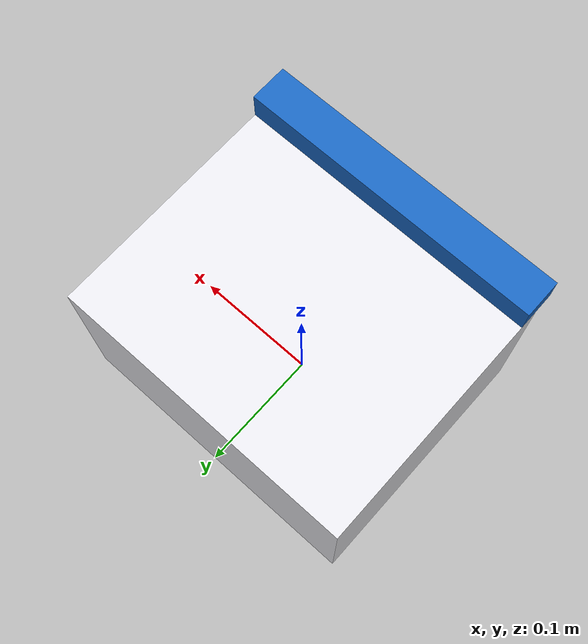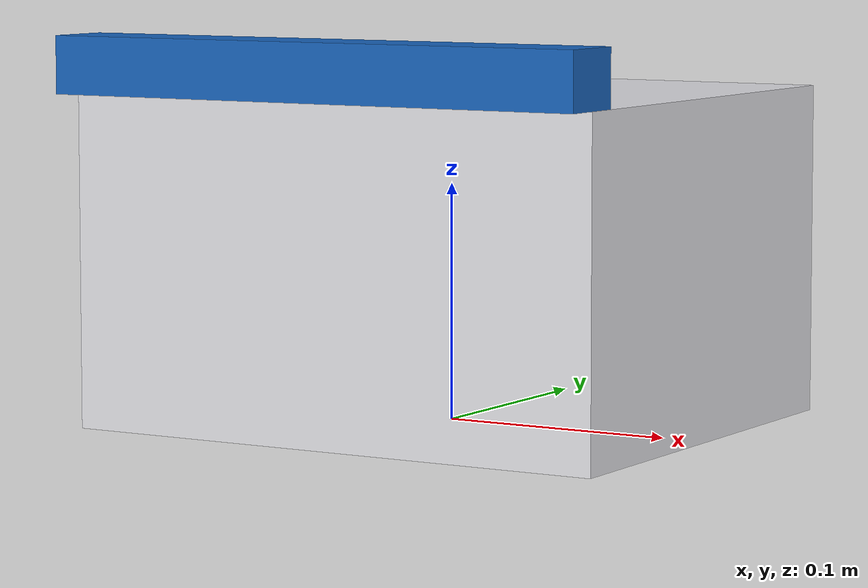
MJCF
<?xml version="1.0" encoding="utf-8"?>
<mujoco model="real_lab_erasmus_rotterdam_biomics">
  <compiler angle="radian" autolimits="true"/>
  <default>
    <default class="body"><geom contype="1" conaffinity="1"/></default>
  </default>
  <worldbody>
    <body name="base">
      <geom type="box" size="0.12 0.1 0.07" pos="0 0 0.07" rgba="0.9 0.9 0.92 1" class="body"/>
      <body name="lid" pos="0 -0.1 0.14">
        <joint name="lid_joint" type="hinge" axis="0 1 0" range="0 1.5" damping="0.6" frictionloss="0.25"/>
  <geom type="box" size="0.12 0.015 0.012" pos="0 0 0.012" rgba="0.1 0.4 0.75 1" class="body"/>
      </body>
    </body>
  </worldbody>
</mujoco>
